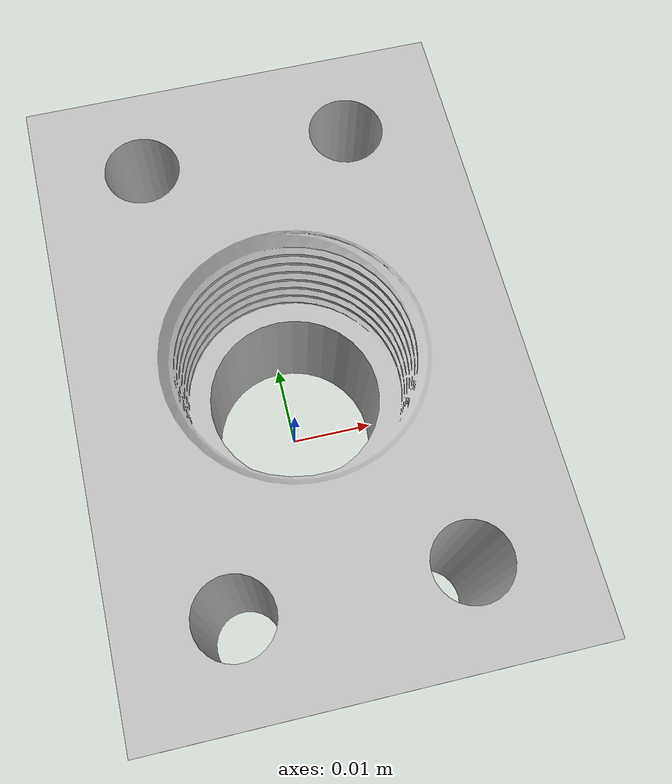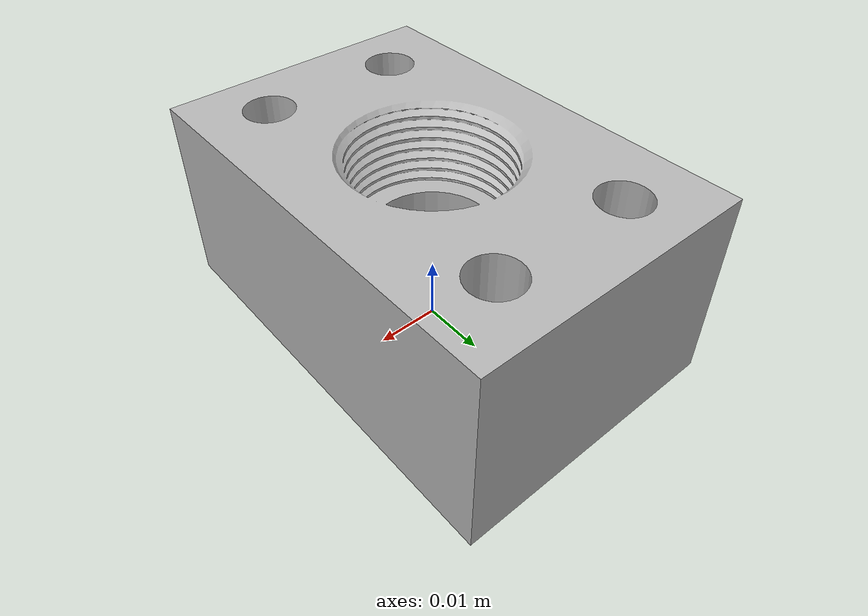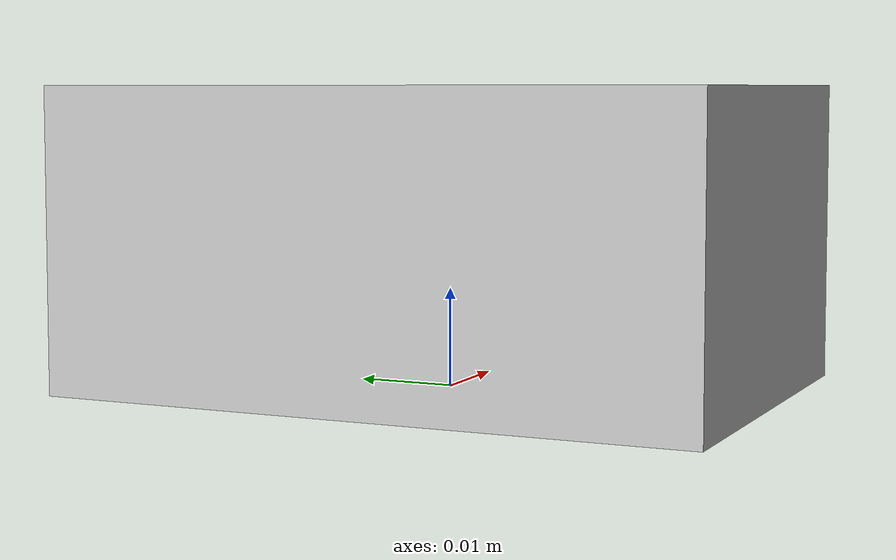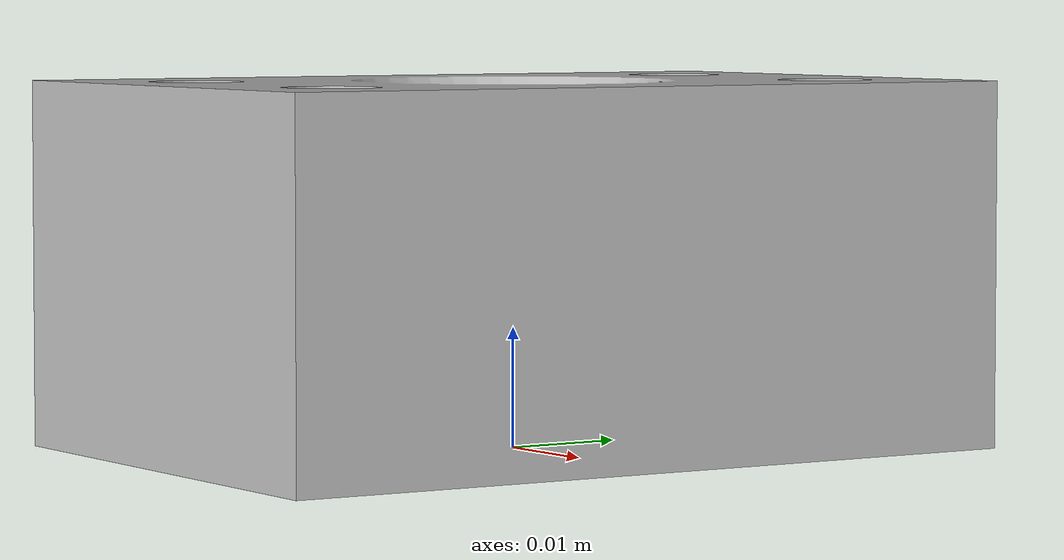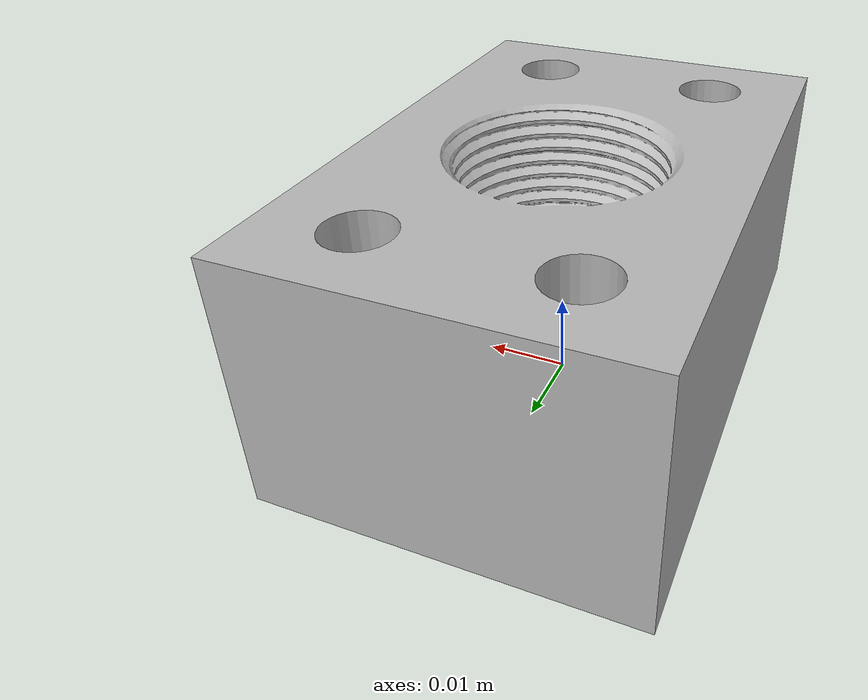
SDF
<?xml version="1.0" ?>
<sdf version="1.0">
  <model name="3d_flange">
    <link name="link">
      <inertial>
        <pose>-0.000000468 0.000000981 0.014935569 0 0 0</pose>
        <mass>0.6</mass>
        <inertia>
          <ixx>0.000291031327973623</ixx>
          <ixy>-0.000000000459107182083864</ixy>
          <ixz>-0.00000000245238099056876</ixz>
          <iyy>0.000159553013306499</iyy>
          <iyz>-0.00000000492950091588965</iyz>
          <izz>0.000357936030316979</izz>
        </inertia>
      </inertial>
      <collision name="collision">
        <pose>0 0 0 0 0 0</pose>
        <geometry>
          <mesh>
            <uri>model://3d_pip_flange/flange_001.stl</uri>
          </mesh>
        </geometry>
        <surface>
          <friction>
            <ode>
              <mu>100000.0</mu>
              <mu2>100000.0</mu2>
            </ode>
          </friction>
          <contact>
            <ode>
              <kp>1000000.0</kp>
              <kd>1000000.0</kd>
              <min_depth>0.001</min_depth>
              <max_vel>0</max_vel>
            </ode>
          </contact>
        </surface>
      </collision>
      <visual name="visual">
        <pose>0 0 0 0 0 0</pose>
        <geometry>
          <mesh>
            <uri>model://3d_pip_flange/flange_001.stl</uri>
          </mesh>
        </geometry>
      </visual>
    </link>
<static>0</static>
    <allow_auto_disable>1</allow_auto_disable>
  </model>
</sdf>
